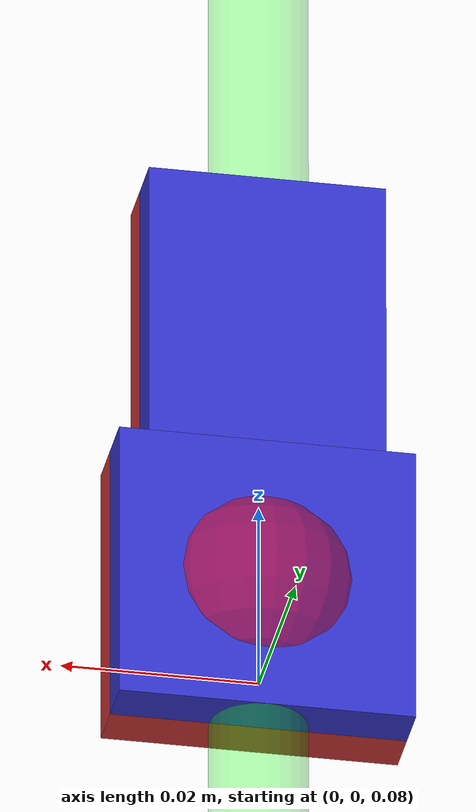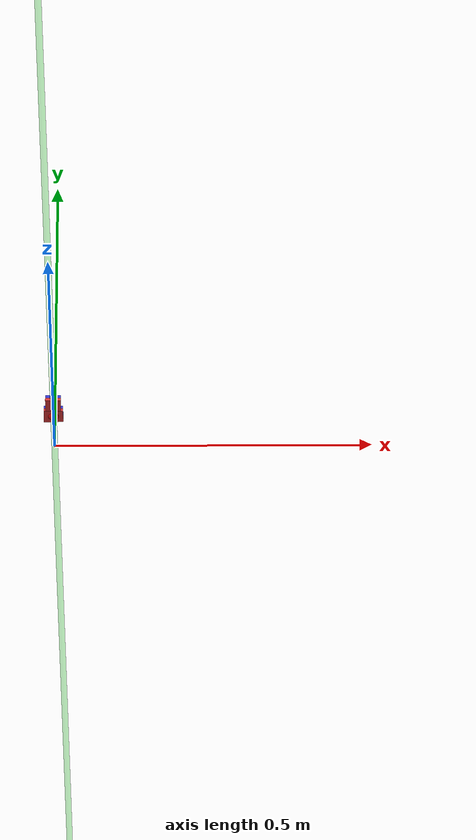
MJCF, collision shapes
<mujoco model="piper_gripper">
  <compiler angle="radian"/>

  <asset>
    <material name="gray_mat" rgba="0.59 0.59 0.59 1"/>
    <mesh name="link7" file="link7.stl"/>
    <mesh name="link8" file="link8.stl"/>
  </asset>

  <worldbody>
    <body name="piper_hand" pos="0 0 0.13503" quat="1 0 0 0" gravcomp="1">
      <inertial pos="0 0 -0.02" mass="0.05" diaginertia="1e-5 1e-5 1e-5"/>

      <body name="eef" pos="0 0 -0.045" quat="0 0 1 0">
        <site name="grip_site" pos="0 0 0" size="0.01 0.01 0.01" rgba="1 0 0 0.5" type="sphere" group="1"/>
        <site name="ee_x" pos="0.05 0 0" size="0.004 .05" quat="0.707105 0 0.707108 0" rgba="1 0 0 0" type="cylinder" group="1"/>
        <site name="ee_y" pos="0 0.05 0" size="0.004 .05" quat="0.707105 0.707108 0 0" rgba="0 1 0 0" type="cylinder" group="1"/>
        <site name="ee_z" pos="0 0 0.05" size="0.004 .05" quat="1 0 0 0" rgba="0 0 1 0" type="cylinder" group="1"/>
        <site name="grip_site_cylinder" pos="0 0 0" size="0.005 10" rgba="0 1 0 0.3" type="cylinder" group="1"/>
        <!-- 腕部相机已移到 robot.xml 的 link6 body 上，从 link6 向指尖外看 -->
      </body>

      <body name="link7" pos="0 0 0" quat="1.89468e-08 1.89469e-08 0.707108 0.707105" gravcomp="1">
        <inertial pos="-0.000277778 -0.0467673 -0.00921029" quat="0.46134 0.536174 -0.553273 0.439968"
          mass="0.0264823" diaginertia="0.001 0.001 0.001"/>
        <joint name="joint7" axis="0 0 -1" type="slide" range="0 0.035" frictionloss="0"/>
        <geom type="mesh" mesh="link7" material="gray_mat" contype="0" conaffinity="0" group="1" density="0"/>
        <!-- 指垫碰撞盒 (原模型参数; 加大摩擦以稳定夹持方块) -->
        <geom name="finger1_collision" type="box" size=".012 .015 .0025" pos="0 -0.015 -0.0025"
          condim="4" friction="2 0.05 0.0001" solref="0.01 0.5" rgba="0.8 0.2 0.2 1" group="0"/>
        <geom name="finger1_pad_collision" type="box" size=".015 .015 .0025" pos="0 -0.045 -0.0025"
          condim="4" friction="2 0.05 0.0001" solref="0.01 0.5" rgba="0.8 0.2 0.2 1" group="0"/>
      </body>

      <body name="link8" pos="0 0 0" quat="1.89468e-08 -1.89469e-08 -0.707108 0.707105" gravcomp="1">
        <inertial pos="0.000277817 0.0467674 -0.0092103" quat="0.553273 0.439968 -0.46134 0.536174"
          mass="0.0264822" diaginertia="0.001 0.001 0.001"/>
        <joint name="joint8" axis="0 0 1" type="slide" range="-0.035 0" frictionloss="0"/>
        <geom type="mesh" mesh="link8" material="gray_mat" contype="0" conaffinity="0" group="1" density="0"/>
        <geom name="finger2_collision" type="box" size=".012 .015 .0025" pos="0 0.015 -0.0025"
          condim="4" friction="2 0.05 0.0001" solref="0.01 0.5" rgba="0.2 0.2 0.8 1" group="0"/>
        <geom name="finger2_pad_collision" type="box" size=".015 .015 .0025" pos="0 0.045 -0.0025"
          condim="4" friction="2 0.05 0.0001" solref="0.01 0.5" rgba="0.2 0.2 0.8 1" group="0"/>
      </body>
    </body>
  </worldbody>

  <actuator>
    <!-- 夹持力增强（2026-08-04 用户批准）: kp 40→120, 全闭夹持力 ~1.15N→~3.5N。
         背景: kp=40 时悬停段方块滑移 ~2cm（1.1mm 之差判滑落, seed 0 实测）;
         forcerange ±10N 不饱和（120×0.035=4.2N） -->
    <position name="gripper" joint="joint7" kp="120" kv="5" forcerange="-10 10"
      ctrllimited="true" ctrlrange="0 0.035"/>
  </actuator>

  <equality>
    <joint joint1="joint8" joint2="joint7" polycoef="0 -1 0 0 0"/>
  </equality>
</mujoco>
